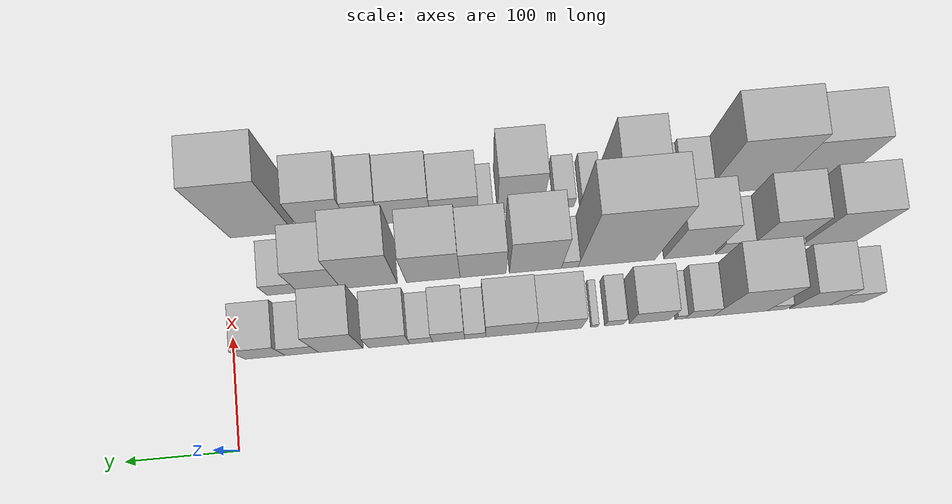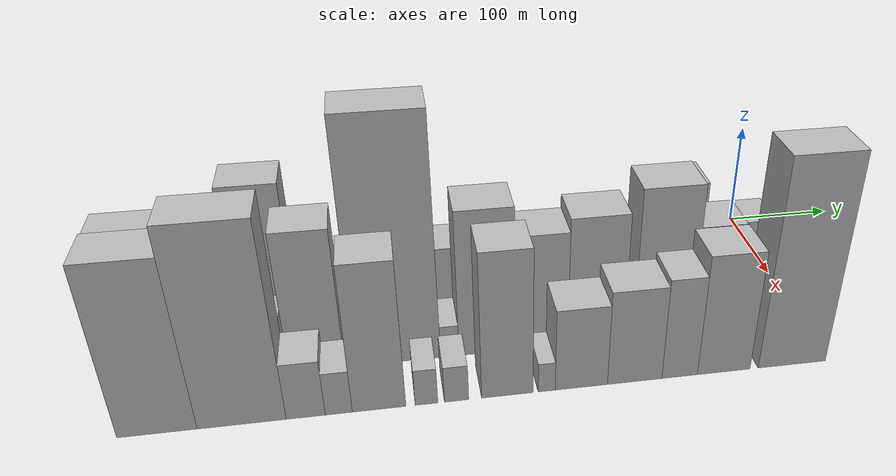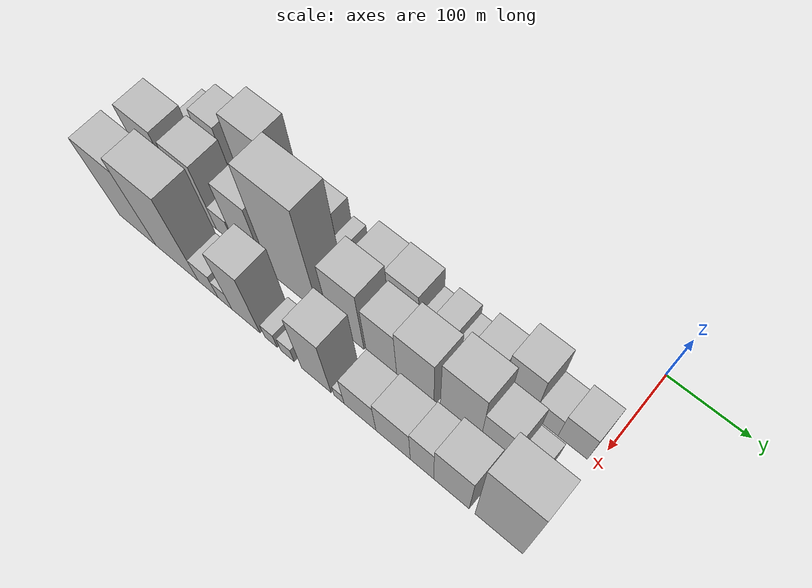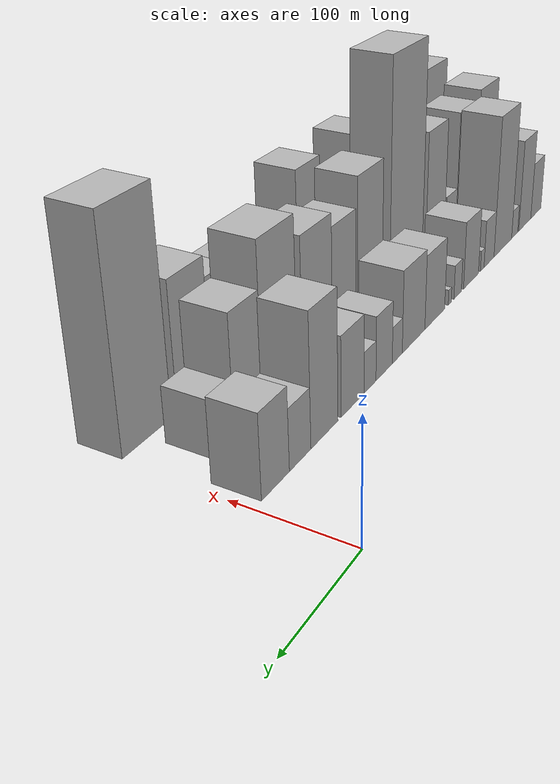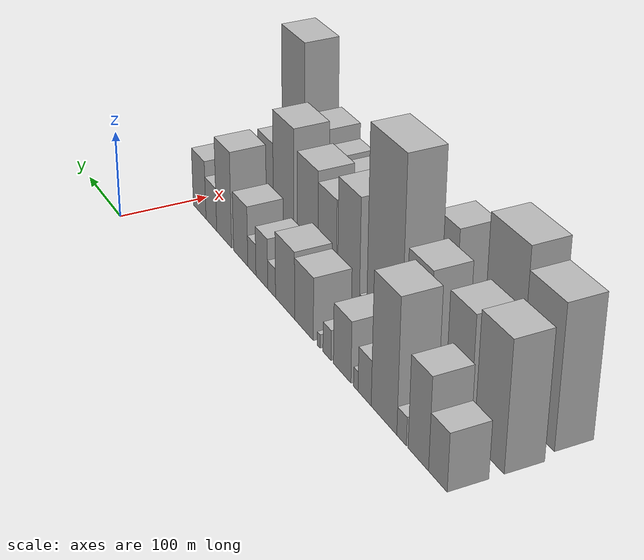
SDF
<sdf version="1.6">
 <world name="default">
  <model name="building_1">
   <static>1</static>
   <pose>100.0000 -544.3724 0 0.000000 0.000000 0.000000</pose>
   <link name="link">
    <pose>0 0 30.00 0 0 0</pose>
    <collision name="collision"><geometry><box><size>40.0000 31.2552 60.0000</size></box></geometry></collision>
    <visual name="visual">
     <cast_shadows>0</cast_shadows>
     <geometry><box><size>40.0000 31.2552 60.0000</size></box></geometry>
     <material>
      <script>
       <uri>model://HANNAS_wall/materials/scripts</uri>
       <uri>model://HANNAS_wall/materials/textures</uri>
       <name>vrc/HANNAS_wall</name>
      </script>
     </material>
    </visual>
   </link>
  </model>
  <model name="building_2">
   <static>1</static>
   <pose>100.0000 -510.9200 0 0.000000 0.000000 0.000000</pose>
   <link name="link">
    <pose>0 0 48.00 0 0 0</pose>
    <collision name="collision"><geometry><box><size>40.0000 35.6496 96.0000</size></box></geometry></collision>
    <visual name="visual">
     <cast_shadows>0</cast_shadows>
     <geometry><box><size>40.0000 35.6496 96.0000</size></box></geometry>
     <material>
      <script>
       <uri>model://HANNAS_wall/materials/scripts</uri>
       <uri>model://HANNAS_wall/materials/textures</uri>
       <name>vrc/HANNAS_wall</name>
      </script>
     </material>
    </visual>
   </link>
  </model>
  <model name="building_3">
   <static>1</static>
   <pose>100.0000 -481.4801 0 0.000000 0.000000 0.000000</pose>
   <link name="link">
    <pose>0 0 15.00 0 0 0</pose>
    <collision name="collision"><geometry><box><size>40.0000 17.2301 30.0000</size></box></geometry></collision>
    <visual name="visual">
     <cast_shadows>0</cast_shadows>
     <geometry><box><size>40.0000 17.2301 30.0000</size></box></geometry>
     <material>
      <script>
       <uri>model://HANNAS_wall/materials/scripts</uri>
       <uri>model://HANNAS_wall/materials/textures</uri>
       <name>vrc/HANNAS_wall</name>
      </script>
     </material>
    </visual>
   </link>
  </model>
  <model name="building_4">
   <static>1</static>
   <pose>100.0000 -448.9706 0 0.000000 0.000000 0.000000</pose>
   <link name="link">
    <pose>0 0 70.50 0 0 0</pose>
    <collision name="collision"><geometry><box><size>40.0000 47.7890 141.0000</size></box></geometry></collision>
    <visual name="visual">
     <cast_shadows>0</cast_shadows>
     <geometry><box><size>40.0000 47.7890 141.0000</size></box></geometry>
     <material>
      <script>
       <uri>model://HANNAS_wall/materials/scripts</uri>
       <uri>model://HANNAS_wall/materials/textures</uri>
       <name>vrc/HANNAS_wall</name>
      </script>
     </material>
    </visual>
   </link>
  </model>
  <model name="building_5">
   <static>1</static>
   <pose>100.0000 -412.3479 0 0.000000 0.000000 0.000000</pose>
   <link name="link">
    <pose>0 0 24.00 0 0 0</pose>
    <collision name="collision"><geometry><box><size>40.0000 25.4565 48.0000</size></box></geometry></collision>
    <visual name="visual">
     <cast_shadows>0</cast_shadows>
     <geometry><box><size>40.0000 25.4565 48.0000</size></box></geometry>
     <material>
      <script>
       <uri>model://HANNAS_wall/materials/scripts</uri>
       <uri>model://HANNAS_wall/materials/textures</uri>
       <name>vrc/HANNAS_wall</name>
      </script>
     </material>
    </visual>
   </link>
  </model>
  <model name="building_6">
   <static>1</static>
   <pose>100.0000 -395.1391 0 0.000000 0.000000 0.000000</pose>
   <link name="link">
    <pose>0 0 10.50 0 0 0</pose>
    <collision name="collision"><geometry><box><size>40.0000 8.9609 21.0000</size></box></geometry></collision>
    <visual name="visual">
     <cast_shadows>0</cast_shadows>
     <geometry><box><size>40.0000 8.9609 21.0000</size></box></geometry>
     <material>
      <script>
       <uri>model://HANNAS_wall/materials/scripts</uri>
       <uri>model://HANNAS_wall/materials/textures</uri>
       <name>vrc/HANNAS_wall</name>
      </script>
     </material>
    </visual>
   </link>
  </model>
  <model name="building_7">
   <static>1</static>
   <pose>100.0000 -367.8494 0 0.000000 0.000000 0.000000</pose>
   <link name="link">
    <pose>0 0 33.00 0 0 0</pose>
    <collision name="collision"><geometry><box><size>40.0000 35.6186 66.0000</size></box></geometry></collision>
    <visual name="visual">
     <cast_shadows>0</cast_shadows>
     <geometry><box><size>40.0000 35.6186 66.0000</size></box></geometry>
     <material>
      <script>
       <uri>model://HANNAS_wall/materials/scripts</uri>
       <uri>model://HANNAS_wall/materials/textures</uri>
       <name>vrc/HANNAS_wall</name>
      </script>
     </material>
    </visual>
   </link>
  </model>
  <model name="building_8">
   <static>1</static>
   <pose>100.0000 -336.5735 0 0.000000 0.000000 0.000000</pose>
   <link name="link">
    <pose>0 0 16.50 0 0 0</pose>
    <collision name="collision"><geometry><box><size>40.0000 16.9333 33.0000</size></box></geometry></collision>
    <visual name="visual">
     <cast_shadows>0</cast_shadows>
     <geometry><box><size>40.0000 16.9333 33.0000</size></box></geometry>
     <material>
      <script>
       <uri>model://HANNAS_wall/materials/scripts</uri>
       <uri>model://HANNAS_wall/materials/textures</uri>
       <name>vrc/HANNAS_wall</name>
      </script>
     </material>
    </visual>
   </link>
  </model>
  <model name="building_9">
   <static>1</static>
   <pose>100.0000 -318.8743 0 0.000000 0.000000 0.000000</pose>
   <link name="link">
    <pose>0 0 7.50 0 0 0</pose>
    <collision name="collision"><geometry><box><size>40.0000 6.4653 15.0000</size></box></geometry></collision>
    <visual name="visual">
     <cast_shadows>0</cast_shadows>
     <geometry><box><size>40.0000 6.4653 15.0000</size></box></geometry>
     <material>
      <script>
       <uri>model://HANNAS_wall/materials/scripts</uri>
       <uri>model://HANNAS_wall/materials/textures</uri>
       <name>vrc/HANNAS_wall</name>
      </script>
     </material>
    </visual>
   </link>
  </model>
  <model name="building_10">
   <static>1</static>
   <pose>100.0000 -286.9913 0 0.000000 0.000000 0.000000</pose>
   <link name="link">
    <pose>0 0 34.50 0 0 0</pose>
    <collision name="collision"><geometry><box><size>40.0000 41.3007 69.0000</size></box></geometry></collision>
    <visual name="visual">
     <cast_shadows>0</cast_shadows>
     <geometry><box><size>40.0000 41.3007 69.0000</size></box></geometry>
     <material>
      <script>
       <uri>model://HANNAS_wall/materials/scripts</uri>
       <uri>model://HANNAS_wall/materials/textures</uri>
       <name>vrc/HANNAS_wall</name>
      </script>
     </material>
    </visual>
   </link>
  </model>
  <model name="building_11">
   <static>1</static>
   <pose>100.0000 -244.3945 0 0.000000 0.000000 0.000000</pose>
   <link name="link">
    <pose>0 0 37.50 0 0 0</pose>
    <collision name="collision"><geometry><box><size>40.0000 43.8927 75.0000</size></box></geometry></collision>
    <visual name="visual">
     <cast_shadows>0</cast_shadows>
     <geometry><box><size>40.0000 43.8927 75.0000</size></box></geometry>
     <material>
      <script>
       <uri>model://HANNAS_wall/materials/scripts</uri>
       <uri>model://HANNAS_wall/materials/textures</uri>
       <name>vrc/HANNAS_wall</name>
      </script>
     </material>
    </visual>
   </link>
  </model>
  <model name="building_12">
   <static>1</static>
   <pose>100.0000 -213.2445 0 0.000000 0.000000 0.000000</pose>
   <link name="link">
    <pose>0 0 16.50 0 0 0</pose>
    <collision name="collision"><geometry><box><size>40.0000 18.4073 33.0000</size></box></geometry></collision>
    <visual name="visual">
     <cast_shadows>0</cast_shadows>
     <geometry><box><size>40.0000 18.4073 33.0000</size></box></geometry>
     <material>
      <script>
       <uri>model://HANNAS_wall/materials/scripts</uri>
       <uri>model://HANNAS_wall/materials/textures</uri>
       <name>vrc/HANNAS_wall</name>
      </script>
     </material>
    </visual>
   </link>
  </model>
  <model name="building_13">
   <static>1</static>
   <pose>100.0000 -189.7287 0 0.000000 0.000000 0.000000</pose>
   <link name="link">
    <pose>0 0 28.50 0 0 0</pose>
    <collision name="collision"><geometry><box><size>40.0000 28.6245 57.0000</size></box></geometry></collision>
    <visual name="visual">
     <cast_shadows>0</cast_shadows>
     <geometry><box><size>40.0000 28.6245 57.0000</size></box></geometry>
     <material>
      <script>
       <uri>model://HANNAS_wall/materials/scripts</uri>
       <uri>model://HANNAS_wall/materials/textures</uri>
       <name>vrc/HANNAS_wall</name>
      </script>
     </material>
    </visual>
   </link>
  </model>
  <model name="building_14">
   <static>1</static>
   <pose>100.0000 -165.3900 0 0.000000 0.000000 0.000000</pose>
   <link name="link">
    <pose>0 0 18.00 0 0 0</pose>
    <collision name="collision"><geometry><box><size>40.0000 20.0529 36.0000</size></box></geometry></collision>
    <visual name="visual">
     <cast_shadows>0</cast_shadows>
     <geometry><box><size>40.0000 20.0529 36.0000</size></box></geometry>
     <material>
      <script>
       <uri>model://HANNAS_wall/materials/scripts</uri>
       <uri>model://HANNAS_wall/materials/textures</uri>
       <name>vrc/HANNAS_wall</name>
      </script>
     </material>
    </visual>
   </link>
  </model>
  <model name="building_15">
   <static>1</static>
   <pose>100.0000 -137.2105 0 0.000000 0.000000 0.000000</pose>
   <link name="link">
    <pose>0 0 34.50 0 0 0</pose>
    <collision name="collision"><geometry><box><size>40.0000 36.3060 69.0000</size></box></geometry></collision>
    <visual name="visual">
     <cast_shadows>0</cast_shadows>
     <geometry><box><size>40.0000 36.3060 69.0000</size></box></geometry>
     <material>
      <script>
       <uri>model://HANNAS_wall/materials/scripts</uri>
       <uri>model://HANNAS_wall/materials/textures</uri>
       <name>vrc/HANNAS_wall</name>
      </script>
     </material>
    </visual>
   </link>
  </model>
  <model name="building_16">
   <static>1</static>
   <pose>100.0000 -94.3048 0 0.000000 0.000000 0.000000</pose>
   <link name="link">
    <pose>0 0 55.50 0 0 0</pose>
    <collision name="collision"><geometry><box><size>40.0000 39.5055 111.0000</size></box></geometry></collision>
    <visual name="visual">
     <cast_shadows>0</cast_shadows>
     <geometry><box><size>40.0000 39.5055 111.0000</size></box></geometry>
     <material>
      <script>
       <uri>model://HANNAS_wall/materials/scripts</uri>
       <uri>model://HANNAS_wall/materials/textures</uri>
       <name>vrc/HANNAS_wall</name>
      </script>
     </material>
    </visual>
   </link>
  </model>
  <model name="building_17">
   <static>1</static>
   <pose>100.0000 -59.9479 0 0.000000 0.000000 0.000000</pose>
   <link name="link">
    <pose>0 0 25.50 0 0 0</pose>
    <collision name="collision"><geometry><box><size>40.0000 29.2083 51.0000</size></box></geometry></collision>
    <visual name="visual">
     <cast_shadows>0</cast_shadows>
     <geometry><box><size>40.0000 29.2083 51.0000</size></box></geometry>
     <material>
      <script>
       <uri>model://HANNAS_wall/materials/scripts</uri>
       <uri>model://HANNAS_wall/materials/textures</uri>
       <name>vrc/HANNAS_wall</name>
      </script>
     </material>
    </visual>
   </link>
  </model>
  <model name="building_18">
   <static>1</static>
   <pose>100.0000 -27.5950 0 0.000000 0.000000 0.000000</pose>
   <link name="link">
    <pose>0 0 34.50 0 0 0</pose>
    <collision name="collision"><geometry><box><size>40.0000 35.4975 69.0000</size></box></geometry></collision>
    <visual name="visual">
     <cast_shadows>0</cast_shadows>
     <geometry><box><size>40.0000 35.4975 69.0000</size></box></geometry>
     <material>
      <script>
       <uri>model://HANNAS_wall/materials/scripts</uri>
       <uri>model://HANNAS_wall/materials/textures</uri>
       <name>vrc/HANNAS_wall</name>
      </script>
     </material>
    </visual>
   </link>
  </model>
  <model name="building_36">
   <static>1</static>
   <pose>155.0000 -535.3363 0 0.000000 0.000000 0.000000</pose>
   <link name="link">
    <pose>0 0 67.50 0 0 0</pose>
    <collision name="collision"><geometry><box><size>40.0000 49.3274 135.0000</size></box></geometry></collision>
    <visual name="visual">
     <cast_shadows>0</cast_shadows>
     <geometry><box><size>40.0000 49.3274 135.0000</size></box></geometry>
     <material>
      <script>
       <uri>model://HANNAS_wall/materials/scripts</uri>
       <uri>model://HANNAS_wall/materials/textures</uri>
       <name>vrc/HANNAS_wall</name>
      </script>
     </material>
    </visual>
   </link>
  </model>
  <model name="building_37">
   <static>1</static>
   <pose>155.0000 -507.0170 0 0.000000 0.000000 0.000000</pose>
   <link name="link">
    <pose>0 0 9.00 0 0 0</pose>
    <collision name="collision"><geometry><box><size>40.0000 7.3112 18.0000</size></box></geometry></collision>
    <visual name="visual">
     <cast_shadows>0</cast_shadows>
     <geometry><box><size>40.0000 7.3112 18.0000</size></box></geometry>
     <material>
      <script>
       <uri>model://HANNAS_wall/materials/scripts</uri>
       <uri>model://HANNAS_wall/materials/textures</uri>
       <name>vrc/HANNAS_wall</name>
      </script>
     </material>
    </visual>
   </link>
  </model>
  <model name="building_38">
   <static>1</static>
   <pose>155.0000 -481.7813 0 0.000000 0.000000 0.000000</pose>
   <link name="link">
    <pose>0 0 63.00 0 0 0</pose>
    <collision name="collision"><geometry><box><size>40.0000 43.1603 126.0000</size></box></geometry></collision>
    <visual name="visual">
     <cast_shadows>0</cast_shadows>
     <geometry><box><size>40.0000 43.1603 126.0000</size></box></geometry>
     <material>
      <script>
       <uri>model://HANNAS_wall/materials/scripts</uri>
       <uri>model://HANNAS_wall/materials/textures</uri>
       <name>vrc/HANNAS_wall</name>
      </script>
     </material>
    </visual>
   </link>
  </model>
  <model name="building_39">
   <static>1</static>
   <pose>155.0000 -447.1484 0 0.000000 0.000000 0.000000</pose>
   <link name="link">
    <pose>0 0 24.00 0 0 0</pose>
    <collision name="collision"><geometry><box><size>40.0000 26.1054 48.0000</size></box></geometry></collision>
    <visual name="visual">
     <cast_shadows>0</cast_shadows>
     <geometry><box><size>40.0000 26.1054 48.0000</size></box></geometry>
     <material>
      <script>
       <uri>model://HANNAS_wall/materials/scripts</uri>
       <uri>model://HANNAS_wall/materials/textures</uri>
       <name>vrc/HANNAS_wall</name>
      </script>
     </material>
    </visual>
   </link>
  </model>
  <model name="building_40">
   <static>1</static>
   <pose>155.0000 -409.1384 0 0.000000 0.000000 0.000000</pose>
   <link name="link">
    <pose>0 0 64.50 0 0 0</pose>
    <collision name="collision"><geometry><box><size>40.0000 43.9147 129.0000</size></box></geometry></collision>
    <visual name="visual">
     <cast_shadows>0</cast_shadows>
     <geometry><box><size>40.0000 43.9147 129.0000</size></box></geometry>
     <material>
      <script>
       <uri>model://HANNAS_wall/materials/scripts</uri>
       <uri>model://HANNAS_wall/materials/textures</uri>
       <name>vrc/HANNAS_wall</name>
      </script>
     </material>
    </visual>
   </link>
  </model>
  <model name="building_41">
   <static>1</static>
   <pose>155.0000 -344.7248 0 0.000000 0.000000 0.000000</pose>
   <link name="link">
    <pose>0 0 109.50 0 0 0</pose>
    <collision name="collision"><geometry><box><size>40.0000 68.9124 219.0000</size></box></geometry></collision>
    <visual name="visual">
     <cast_shadows>0</cast_shadows>
     <geometry><box><size>40.0000 68.9124 219.0000</size></box></geometry>
     <material>
      <script>
       <uri>model://HANNAS_wall/materials/scripts</uri>
       <uri>model://HANNAS_wall/materials/textures</uri>
       <name>vrc/HANNAS_wall</name>
      </script>
     </material>
    </visual>
   </link>
  </model>
  <model name="building_42">
   <static>1</static>
   <pose>155.0000 -302.7410 0 0.000000 0.000000 0.000000</pose>
   <link name="link">
    <pose>0 0 15.00 0 0 0</pose>
    <collision name="collision"><geometry><box><size>40.0000 15.0551 30.0000</size></box></geometry></collision>
    <visual name="visual">
     <cast_shadows>0</cast_shadows>
     <geometry><box><size>40.0000 15.0551 30.0000</size></box></geometry>
     <material>
      <script>
       <uri>model://HANNAS_wall/materials/scripts</uri>
       <uri>model://HANNAS_wall/materials/textures</uri>
       <name>vrc/HANNAS_wall</name>
      </script>
     </material>
    </visual>
   </link>
  </model>
  <model name="building_43">
   <static>1</static>
   <pose>155.0000 -271.9699 0 0.000000 0.000000 0.000000</pose>
   <link name="link">
    <pose>0 0 67.50 0 0 0</pose>
    <collision name="collision"><geometry><box><size>40.0000 46.4870 135.0000</size></box></geometry></collision>
    <visual name="visual">
     <cast_shadows>0</cast_shadows>
     <geometry><box><size>40.0000 46.4870 135.0000</size></box></geometry>
     <material>
      <script>
       <uri>model://HANNAS_wall/materials/scripts</uri>
       <uri>model://HANNAS_wall/materials/textures</uri>
       <name>vrc/HANNAS_wall</name>
      </script>
     </material>
    </visual>
   </link>
  </model>
  <model name="building_44">
   <static>1</static>
   <pose>155.0000 -225.2922 0 0.000000 0.000000 0.000000</pose>
   <link name="link">
    <pose>0 0 54.00 0 0 0</pose>
    <collision name="collision"><geometry><box><size>40.0000 40.8683 108.0000</size></box></geometry></collision>
    <visual name="visual">
     <cast_shadows>0</cast_shadows>
     <geometry><box><size>40.0000 40.8683 108.0000</size></box></geometry>
     <material>
      <script>
       <uri>model://HANNAS_wall/materials/scripts</uri>
       <uri>model://HANNAS_wall/materials/textures</uri>
       <name>vrc/HANNAS_wall</name>
      </script>
     </material>
    </visual>
   </link>
  </model>
  <model name="building_45">
   <static>1</static>
   <pose>155.0000 -180.8751 0 0.000000 0.000000 0.000000</pose>
   <link name="link">
    <pose>0 0 60.00 0 0 0</pose>
    <collision name="collision"><geometry><box><size>40.0000 47.9659 120.0000</size></box></geometry></collision>
    <visual name="visual">
     <cast_shadows>0</cast_shadows>
     <geometry><box><size>40.0000 47.9659 120.0000</size></box></geometry>
     <material>
      <script>
       <uri>model://HANNAS_wall/materials/scripts</uri>
       <uri>model://HANNAS_wall/materials/textures</uri>
       <name>vrc/HANNAS_wall</name>
      </script>
     </material>
    </visual>
   </link>
  </model>
  <model name="building_46">
   <static>1</static>
   <pose>155.0000 -123.7894 0 0.000000 0.000000 0.000000</pose>
   <link name="link">
    <pose>0 0 70.50 0 0 0</pose>
    <collision name="collision"><geometry><box><size>40.0000 50.2055 141.0000</size></box></geometry></collision>
    <visual name="visual">
     <cast_shadows>0</cast_shadows>
     <geometry><box><size>40.0000 50.2055 141.0000</size></box></geometry>
     <material>
      <script>
       <uri>model://HANNAS_wall/materials/scripts</uri>
       <uri>model://HANNAS_wall/materials/textures</uri>
       <name>vrc/HANNAS_wall</name>
      </script>
     </material>
    </visual>
   </link>
  </model>
  <model name="building_47">
   <static>1</static>
   <pose>155.0000 -79.6146 0 0.000000 0.000000 0.000000</pose>
   <link name="link">
    <pose>0 0 51.00 0 0 0</pose>
    <collision name="collision"><geometry><box><size>40.0000 38.1442 102.0000</size></box></geometry></collision>
    <visual name="visual">
     <cast_shadows>0</cast_shadows>
     <geometry><box><size>40.0000 38.1442 102.0000</size></box></geometry>
     <material>
      <script>
       <uri>model://HANNAS_wall/materials/scripts</uri>
       <uri>model://HANNAS_wall/materials/textures</uri>
       <name>vrc/HANNAS_wall</name>
      </script>
     </material>
    </visual>
   </link>
  </model>
  <model name="building_48">
   <static>1</static>
   <pose>155.0000 -46.6470 0 0.000000 0.000000 0.000000</pose>
   <link name="link">
    <pose>0 0 24.00 0 0 0</pose>
    <collision name="collision"><geometry><box><size>40.0000 27.7909 48.0000</size></box></geometry></collision>
    <visual name="visual">
     <cast_shadows>0</cast_shadows>
     <geometry><box><size>40.0000 27.7909 48.0000</size></box></geometry>
     <material>
      <script>
       <uri>model://HANNAS_wall/materials/scripts</uri>
       <uri>model://HANNAS_wall/materials/textures</uri>
       <name>vrc/HANNAS_wall</name>
      </script>
     </material>
    </visual>
   </link>
  </model>
  <model name="building_66">
   <static>1</static>
   <pose>210.0000 -523.6477 0 0.000000 0.000000 0.000000</pose>
   <link name="link">
    <pose>0 0 75.00 0 0 0</pose>
    <collision name="collision"><geometry><box><size>40.0000 56.7046 150.0000</size></box></geometry></collision>
    <visual name="visual">
     <cast_shadows>0</cast_shadows>
     <geometry><box><size>40.0000 56.7046 150.0000</size></box></geometry>
     <material>
      <script>
       <uri>model://HANNAS_wall/materials/scripts</uri>
       <uri>model://HANNAS_wall/materials/textures</uri>
       <name>vrc/HANNAS_wall</name>
      </script>
     </material>
    </visual>
   </link>
  </model>
  <model name="building_67">
   <static>1</static>
   <pose>210.0000 -463.0037 0 0.000000 0.000000 0.000000</pose>
   <link name="link">
    <pose>0 0 87.00 0 0 0</pose>
    <collision name="collision"><geometry><box><size>40.0000 64.5834 174.0000</size></box></geometry></collision>
    <visual name="visual">
     <cast_shadows>0</cast_shadows>
     <geometry><box><size>40.0000 64.5834 174.0000</size></box></geometry>
     <material>
      <script>
       <uri>model://HANNAS_wall/materials/scripts</uri>
       <uri>model://HANNAS_wall/materials/textures</uri>
       <name>vrc/HANNAS_wall</name>
      </script>
     </material>
    </visual>
   </link>
  </model>
  <model name="building_68">
   <static>1</static>
   <pose>210.0000 -416.3544 0 0.000000 0.000000 0.000000</pose>
   <link name="link">
    <pose>0 0 25.50 0 0 0</pose>
    <collision name="collision"><geometry><box><size>40.0000 28.7152 51.0000</size></box></geometry></collision>
    <visual name="visual">
     <cast_shadows>0</cast_shadows>
     <geometry><box><size>40.0000 28.7152 51.0000</size></box></geometry>
     <material>
      <script>
       <uri>model://HANNAS_wall/materials/scripts</uri>
       <uri>model://HANNAS_wall/materials/textures</uri>
       <name>vrc/HANNAS_wall</name>
      </script>
     </material>
    </visual>
   </link>
  </model>
  <model name="building_69">
   <static>1</static>
   <pose>210.0000 -391.9346 0 0.000000 0.000000 0.000000</pose>
   <link name="link">
    <pose>0 0 19.50 0 0 0</pose>
    <collision name="collision"><geometry><box><size>40.0000 20.1245 39.0000</size></box></geometry></collision>
    <visual name="visual">
     <cast_shadows>0</cast_shadows>
     <geometry><box><size>40.0000 20.1245 39.0000</size></box></geometry>
     <material>
      <script>
       <uri>model://HANNAS_wall/materials/scripts</uri>
       <uri>model://HANNAS_wall/materials/textures</uri>
       <name>vrc/HANNAS_wall</name>
      </script>
     </material>
    </visual>
   </link>
  </model>
  <model name="building_70">
   <static>1</static>
   <pose>210.0000 -361.7401 0 0.000000 0.000000 0.000000</pose>
   <link name="link">
    <pose>0 0 66.00 0 0 0</pose>
    <collision name="collision"><geometry><box><size>40.0000 40.2645 132.0000</size></box></geometry></collision>
    <visual name="visual">
     <cast_shadows>0</cast_shadows>
     <geometry><box><size>40.0000 40.2645 132.0000</size></box></geometry>
     <material>
      <script>
       <uri>model://HANNAS_wall/materials/scripts</uri>
       <uri>model://HANNAS_wall/materials/textures</uri>
       <name>vrc/HANNAS_wall</name>
      </script>
     </material>
    </visual>
   </link>
  </model>
  <model name="building_71">
   <static>1</static>
   <pose>210.0000 -325.9424 0 0.000000 0.000000 0.000000</pose>
   <link name="link">
    <pose>0 0 16.50 0 0 0</pose>
    <collision name="collision"><geometry><box><size>40.0000 17.3309 33.0000</size></box></geometry></collision>
    <visual name="visual">
     <cast_shadows>0</cast_shadows>
     <geometry><box><size>40.0000 17.3309 33.0000</size></box></geometry>
     <material>
      <script>
       <uri>model://HANNAS_wall/materials/scripts</uri>
       <uri>model://HANNAS_wall/materials/textures</uri>
       <name>vrc/HANNAS_wall</name>
      </script>
     </material>
    </visual>
   </link>
  </model>
  <model name="building_72">
   <static>1</static>
   <pose>210.0000 -302.9399 0 0.000000 0.000000 0.000000</pose>
   <link name="link">
    <pose>0 0 16.50 0 0 0</pose>
    <collision name="collision"><geometry><box><size>40.0000 18.6741 33.0000</size></box></geometry></collision>
    <visual name="visual">
     <cast_shadows>0</cast_shadows>
     <geometry><box><size>40.0000 18.6741 33.0000</size></box></geometry>
     <material>
      <script>
       <uri>model://HANNAS_wall/materials/scripts</uri>
       <uri>model://HANNAS_wall/materials/textures</uri>
       <name>vrc/HANNAS_wall</name>
      </script>
     </material>
    </visual>
   </link>
  </model>
  <model name="building_73">
   <static>1</static>
   <pose>210.0000 -263.5109 0 0.000000 0.000000 0.000000</pose>
   <link name="link">
    <pose>0 0 66.00 0 0 0</pose>
    <collision name="collision"><geometry><box><size>40.0000 40.1838 132.0000</size></box></geometry></collision>
    <visual name="visual">
     <cast_shadows>0</cast_shadows>
     <geometry><box><size>40.0000 40.1838 132.0000</size></box></geometry>
     <material>
      <script>
       <uri>model://HANNAS_wall/materials/scripts</uri>
       <uri>model://HANNAS_wall/materials/textures</uri>
       <name>vrc/HANNAS_wall</name>
      </script>
     </material>
    </visual>
   </link>
  </model>
  <model name="building_74">
   <static>1</static>
   <pose>210.0000 -232.6838 0 0.000000 0.000000 0.000000</pose>
   <link name="link">
    <pose>0 0 13.50 0 0 0</pose>
    <collision name="collision"><geometry><box><size>40.0000 13.4705 27.0000</size></box></geometry></collision>
    <visual name="visual">
     <cast_shadows>0</cast_shadows>
     <geometry><box><size>40.0000 13.4705 27.0000</size></box></geometry>
     <material>
      <script>
       <uri>model://HANNAS_wall/materials/scripts</uri>
       <uri>model://HANNAS_wall/materials/textures</uri>
       <name>vrc/HANNAS_wall</name>
      </script>
     </material>
    </visual>
   </link>
  </model>
  <model name="building_75">
   <static>1</static>
   <pose>210.0000 -205.0967 0 0.000000 0.000000 0.000000</pose>
   <link name="link">
    <pose>0 0 37.50 0 0 0</pose>
    <collision name="collision"><geometry><box><size>40.0000 41.7037 75.0000</size></box></geometry></collision>
    <visual name="visual">
     <cast_shadows>0</cast_shadows>
     <geometry><box><size>40.0000 41.7037 75.0000</size></box></geometry>
     <material>
      <script>
       <uri>model://HANNAS_wall/materials/scripts</uri>
       <uri>model://HANNAS_wall/materials/textures</uri>
       <name>vrc/HANNAS_wall</name>
      </script>
     </material>
    </visual>
   </link>
  </model>
  <model name="building_76">
   <static>1</static>
   <pose>210.0000 -162.2078 0 0.000000 0.000000 0.000000</pose>
   <link name="link">
    <pose>0 0 43.50 0 0 0</pose>
    <collision name="collision"><geometry><box><size>40.0000 44.0740 87.0000</size></box></geometry></collision>
    <visual name="visual">
     <cast_shadows>0</cast_shadows>
     <geometry><box><size>40.0000 44.0740 87.0000</size></box></geometry>
     <material>
      <script>
       <uri>model://HANNAS_wall/materials/scripts</uri>
       <uri>model://HANNAS_wall/materials/textures</uri>
       <name>vrc/HANNAS_wall</name>
      </script>
     </material>
    </visual>
   </link>
  </model>
  <model name="building_77">
   <static>1</static>
   <pose>210.0000 -125.5423 0 0.000000 0.000000 0.000000</pose>
   <link name="link">
    <pose>0 0 46.50 0 0 0</pose>
    <collision name="collision"><geometry><box><size>40.0000 29.2571 93.0000</size></box></geometry></collision>
    <visual name="visual">
     <cast_shadows>0</cast_shadows>
     <geometry><box><size>40.0000 29.2571 93.0000</size></box></geometry>
     <material>
      <script>
       <uri>model://HANNAS_wall/materials/scripts</uri>
       <uri>model://HANNAS_wall/materials/textures</uri>
       <name>vrc/HANNAS_wall</name>
      </script>
     </material>
    </visual>
   </link>
  </model>
  <model name="building_78">
   <static>1</static>
   <pose>210.0000 -89.0269 0 0.000000 0.000000 0.000000</pose>
   <link name="link">
    <pose>0 0 55.50 0 0 0</pose>
    <collision name="collision"><geometry><box><size>40.0000 43.7739 111.0000</size></box></geometry></collision>
    <visual name="visual">
     <cast_shadows>0</cast_shadows>
     <geometry><box><size>40.0000 43.7739 111.0000</size></box></geometry>
     <material>
      <script>
       <uri>model://HANNAS_wall/materials/scripts</uri>
       <uri>model://HANNAS_wall/materials/textures</uri>
       <name>vrc/HANNAS_wall</name>
      </script>
     </material>
    </visual>
   </link>
  </model>
  <model name="building_79">
   <static>1</static>
   <pose>210.0000 -31.6433 0 0.000000 0.000000 0.000000</pose>
   <link name="link">
    <pose>0 0 94.50 0 0 0</pose>
    <collision name="collision"><geometry><box><size>40.0000 56.9933 189.0000</size></box></geometry></collision>
    <visual name="visual">
     <cast_shadows>0</cast_shadows>
     <geometry><box><size>40.0000 56.9933 189.0000</size></box></geometry>
     <material>
      <script>
       <uri>model://HANNAS_wall/materials/scripts</uri>
       <uri>model://HANNAS_wall/materials/textures</uri>
       <name>vrc/HANNAS_wall</name>
      </script>
     </material>
    </visual>
   </link>
  </model>
 </world>
</sdf>
